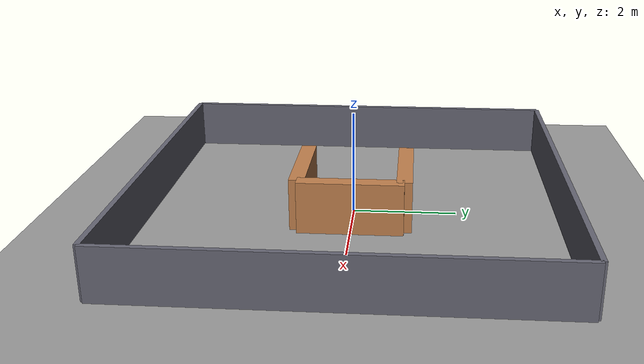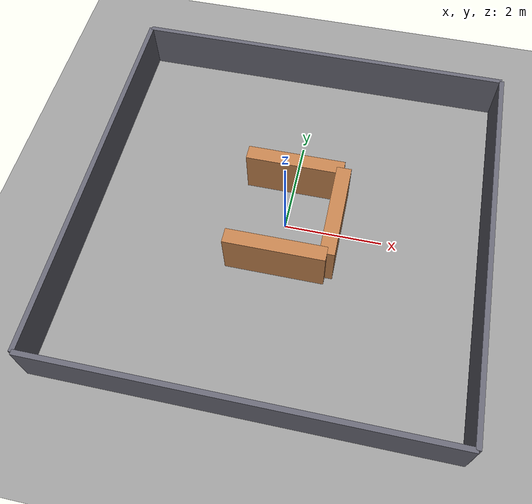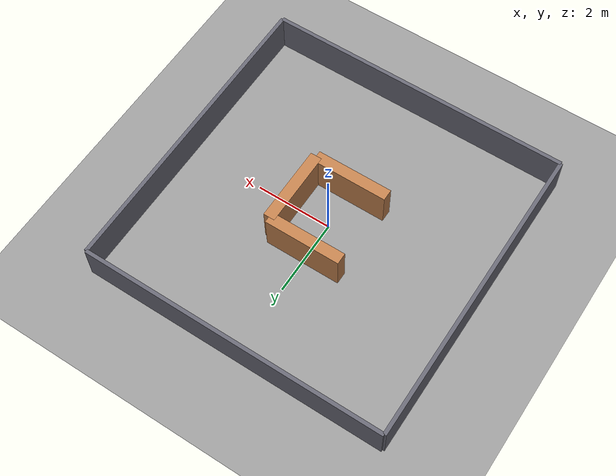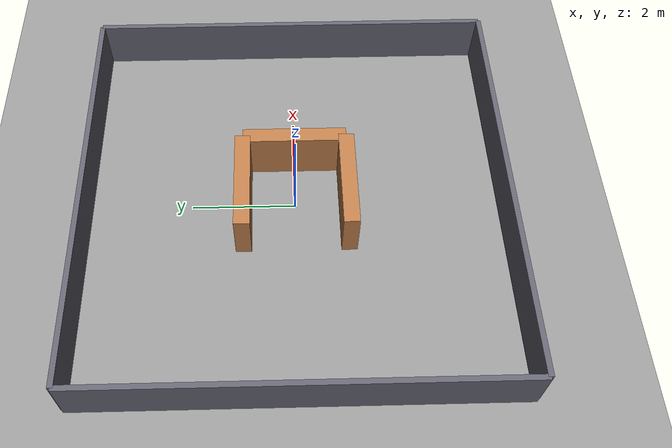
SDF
<?xml version="1.0" ?>
<sdf version="1.10">
  <world name="testbed">
    <plugin filename="gz-sim-physics-system" name="gz::sim::systems::Physics" />
    <plugin filename="gz-sim-user-commands-system" name="gz::sim::systems::UserCommands" />
    <plugin filename="gz-sim-scene-broadcaster-system" name="gz::sim::systems::SceneBroadcaster" />
    <plugin filename="gz-sim-imu-system" name="gz::sim::systems::Imu" />
    <plugin filename="gz-sim-contact-system" name="gz::sim::systems::Contact" />
    <plugin filename="gz-sim-sensors-system" name="gz::sim::systems::Sensors">
      <render_engine>ogre2</render_engine>
    </plugin>
    <light name="sun" type="directional">
      <cast_shadows>true</cast_shadows>
      <pose>0 0 10 0 0 0</pose>
      <diffuse>0.9 0.9 0.9 1</diffuse>
      <specular>0.2 0.2 0.2 1</specular>
      <direction>0.5 0.1 -0.9</direction>
    </light>
    <model name="ground_plane">
      <static>true</static>
      <link name="link">
        <collision name="collision">
          <geometry>
            <plane>
              <normal>0 0 1</normal>
              <size>12.000 12.000</size>
            </plane>
          </geometry>
        </collision>
        <visual name="visual">
          <geometry>
            <plane>
              <normal>0 0 1</normal>
              <size>12.000 12.000</size>
            </plane>
          </geometry>
          <material>
            <ambient>0.600 0.600 0.600 1</ambient>
            <diffuse>0.600 0.600 0.600 1</diffuse>
            <specular>0.700 0.700 0.700 1</specular>
          </material>
        </visual>
      </link>
    </model>
    <model name="perimeter_north">
      <static>true</static>
      <pose>0.000000 4.000000 0.500000 0.000000 0.000000 0.000000</pose>
      <link name="link">
        <collision name="collision">
          <geometry>
            <box>
              <size>8.000000 0.100000 1.000000</size>
            </box>
          </geometry>
        </collision>
        <visual name="visual">
          <geometry>
            <box>
              <size>8.000000 0.100000 1.000000</size>
            </box>
          </geometry>
          <material>
            <ambient>0.400 0.400 0.450 1</ambient>
            <diffuse>0.400 0.400 0.450 1</diffuse>
            <specular>0.500 0.500 0.550 1</specular>
          </material>
        </visual>
      </link>
    </model>
    <model name="perimeter_south">
      <static>true</static>
      <pose>0.000000 -4.000000 0.500000 0.000000 0.000000 0.000000</pose>
      <link name="link">
        <collision name="collision">
          <geometry>
            <box>
              <size>8.000000 0.100000 1.000000</size>
            </box>
          </geometry>
        </collision>
        <visual name="visual">
          <geometry>
            <box>
              <size>8.000000 0.100000 1.000000</size>
            </box>
          </geometry>
          <material>
            <ambient>0.400 0.400 0.450 1</ambient>
            <diffuse>0.400 0.400 0.450 1</diffuse>
            <specular>0.500 0.500 0.550 1</specular>
          </material>
        </visual>
      </link>
    </model>
    <model name="perimeter_west">
      <static>true</static>
      <pose>-4.000000 0.000000 0.500000 0.000000 0.000000 1.570796</pose>
      <link name="link">
        <collision name="collision">
          <geometry>
            <box>
              <size>8.000000 0.100000 1.000000</size>
            </box>
          </geometry>
        </collision>
        <visual name="visual">
          <geometry>
            <box>
              <size>8.000000 0.100000 1.000000</size>
            </box>
          </geometry>
          <material>
            <ambient>0.400 0.400 0.450 1</ambient>
            <diffuse>0.400 0.400 0.450 1</diffuse>
            <specular>0.500 0.500 0.550 1</specular>
          </material>
        </visual>
      </link>
    </model>
    <model name="perimeter_east">
      <static>true</static>
      <pose>4.000000 0.000000 0.500000 0.000000 0.000000 1.570796</pose>
      <link name="link">
        <collision name="collision">
          <geometry>
            <box>
              <size>8.000000 0.100000 1.000000</size>
            </box>
          </geometry>
        </collision>
        <visual name="visual">
          <geometry>
            <box>
              <size>8.000000 0.100000 1.000000</size>
            </box>
          </geometry>
          <material>
            <ambient>0.400 0.400 0.450 1</ambient>
            <diffuse>0.400 0.400 0.450 1</diffuse>
            <specular>0.500 0.500 0.550 1</specular>
          </material>
        </visual>
      </link>
    </model>
    <model name="u_back">
      <static>true</static>
      <pose>1.000000 0.000000 0.500000 0.000000 0.000000 1.570796</pose>
      <link name="link">
        <collision name="collision">
          <geometry>
            <box>
              <size>2.000000 0.300000 1.000000</size>
            </box>
          </geometry>
        </collision>
        <visual name="visual">
          <geometry>
            <box>
              <size>2.000000 0.300000 1.000000</size>
            </box>
          </geometry>
          <material>
            <ambient>0.750 0.500 0.300 1</ambient>
            <diffuse>0.750 0.500 0.300 1</diffuse>
            <specular>0.850 0.600 0.400 1</specular>
          </material>
        </visual>
      </link>
    </model>
    <model name="u_top">
      <static>true</static>
      <pose>0.000000 1.000000 0.500000 0.000000 0.000000 3.141593</pose>
      <link name="link">
        <collision name="collision">
          <geometry>
            <box>
              <size>2.000000 0.300000 1.000000</size>
            </box>
          </geometry>
        </collision>
        <visual name="visual">
          <geometry>
            <box>
              <size>2.000000 0.300000 1.000000</size>
            </box>
          </geometry>
          <material>
            <ambient>0.750 0.500 0.300 1</ambient>
            <diffuse>0.750 0.500 0.300 1</diffuse>
            <specular>0.850 0.600 0.400 1</specular>
          </material>
        </visual>
      </link>
    </model>
    <model name="u_bot">
      <static>true</static>
      <pose>0.000000 -1.000000 0.500000 0.000000 0.000000 3.141593</pose>
      <link name="link">
        <collision name="collision">
          <geometry>
            <box>
              <size>2.000000 0.300000 1.000000</size>
            </box>
          </geometry>
        </collision>
        <visual name="visual">
          <geometry>
            <box>
              <size>2.000000 0.300000 1.000000</size>
            </box>
          </geometry>
          <material>
            <ambient>0.750 0.500 0.300 1</ambient>
            <diffuse>0.750 0.500 0.300 1</diffuse>
            <specular>0.850 0.600 0.400 1</specular>
          </material>
        </visual>
      </link>
    </model>
  </world>
</sdf>
